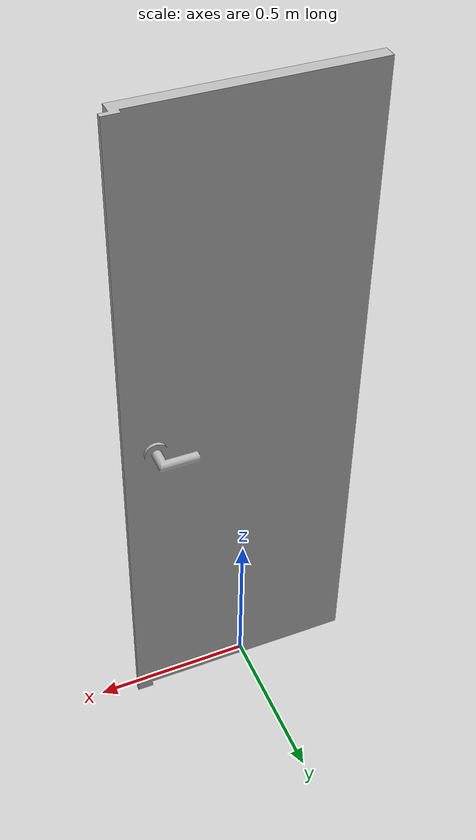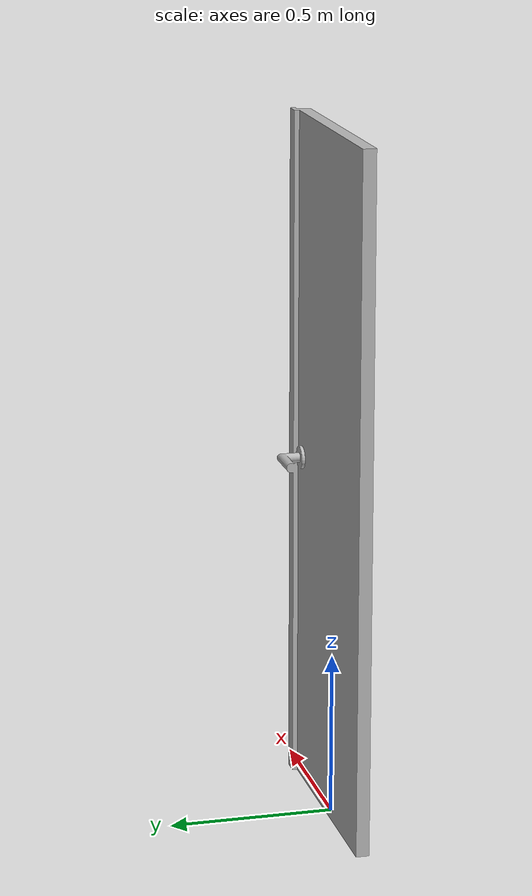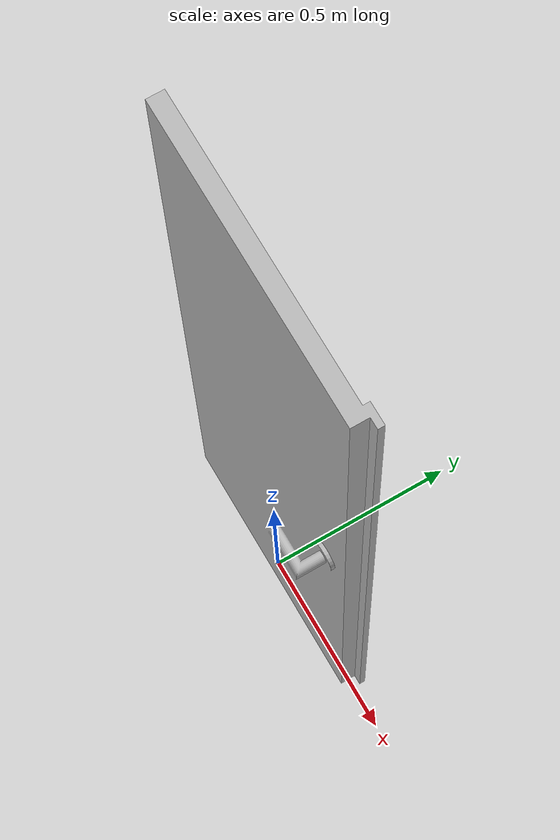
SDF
<?xml version="1.0"?>
<sdf version="1.4">
<model name="dvere_70">
	<pose>0 0 0 0 0 0</pose>
	<static>true</static>
	<link name="dvere_70_collision">
		<collision name="dvere_70_collision">
		<geometry>
			<mesh>
				<uri>model://dvere_70/meshes/model.dae</uri>

			</mesh>
		</geometry>
		</collision>
	<visual name="dvere_70_mesh">
	<cast_shadows>false</cast_shadows>
		<geometry>
			<mesh>
				<uri> model://dvere_70/meshes/model.dae</uri>

			</mesh>
		</geometry>
		<material>
		<script>
			<uri> model://dvere_70/material/scripts</uri>
			<uri> model://dvere_70/material/textures</uri>
			<name>dvere_70/Diffuse</name>
		</script>
		</material>

	</visual>
</link>
</model>
</sdf>
